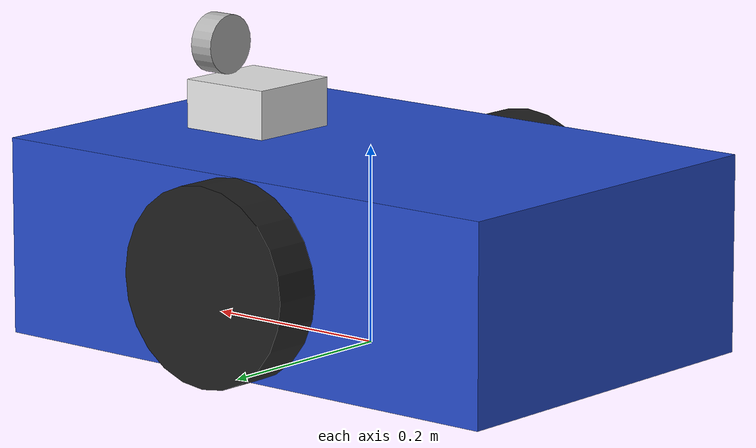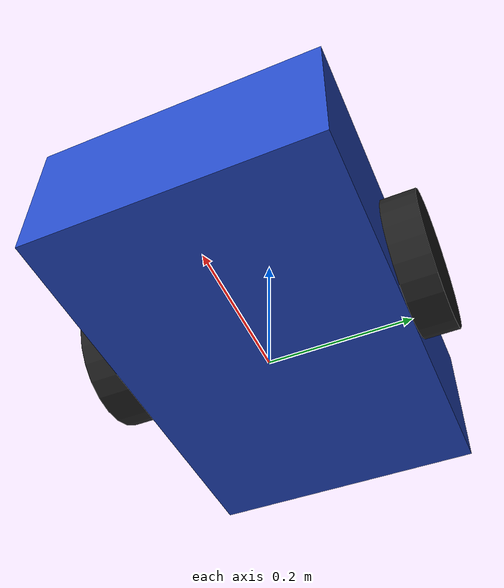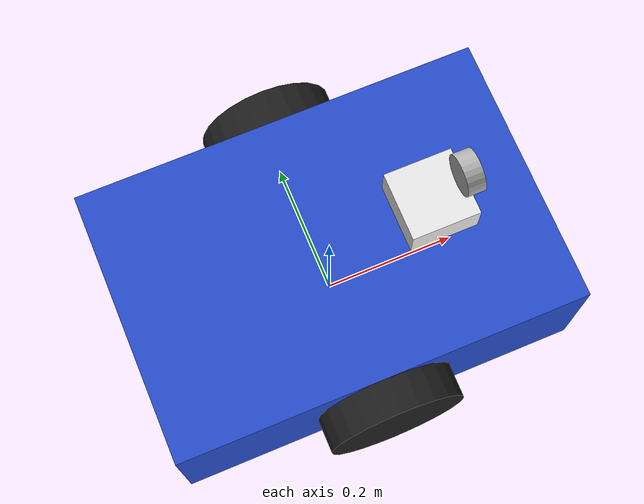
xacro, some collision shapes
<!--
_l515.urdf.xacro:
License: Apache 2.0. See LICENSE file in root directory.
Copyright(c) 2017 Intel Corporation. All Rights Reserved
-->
<?xml version="1.0"?>

<robot name="mobile_robot_with_l515" xmlns:xacro="http://ros.org/wiki/xacro">

  <xacro:include filename="$(find realsense2_description)/urdf/_l515.urdf.xacro" />

  <!-- Constants for robot dimensions -->
  <xacro:property name="base_length" value="0.6" />
  <xacro:property name="base_width" value="0.4" />
  <xacro:property name="base_height" value="0.2" />
  <xacro:property name="wheel_radius" value="0.1" />
  <xacro:property name="wheel_width" value="0.05" />
  <xacro:property name="wheel_separation" value="0.45" />

  <!-- Base footprint (on the ground) -->
  <link name="base_footprint"/>

  <!-- Base link joint -->
  <joint name="base_joint" type="fixed">
    <parent link="base_footprint"/>
    <child link="base_link"/>
    <origin xyz="0 0 ${wheel_radius}" rpy="0 0 0"/>
  </joint>

  <!-- Robot Base Link -->
  <link name="base_link">
    <visual>
      <geometry>
        <box size="${base_length} ${base_width} ${base_height}"/>
      </geometry>
      <material name="blue"/>
    </visual>
    <collision>
      <geometry>
        <box size="${base_length} ${base_width} ${base_height}"/>
      </geometry>
    </collision>
    <inertial>
      <mass value="20.0"/>
      <origin xyz="0 0 0" rpy="0 0 0"/>
      <inertia ixx="0.267" ixy="0.0" ixz="0.0"
               iyy="0.667" iyz="0.0"
               izz="0.8"/>
    </inertial>
  </link>

  <!-- Gazebo material for base -->
  <gazebo reference="base_link">
    <material>Gazebo/Blue</material>
  </gazebo>

  <!-- Left Wheel -->
  <link name="left_wheel">
    <visual>
      <geometry>
        <cylinder radius="${wheel_radius}" length="${wheel_width}"/>
      </geometry>
      <material name="black"/>
    </visual>
    <collision>
      <geometry>
        <cylinder radius="${wheel_radius}" length="${wheel_width}"/>
      </geometry>
    </collision>
    <inertial>
      <mass value="1.0"/>
      <origin xyz="0 0 0" rpy="0 0 0"/>
      <inertia ixx="0.005" ixy="0.0" ixz="0.0"
               iyy="0.005" iyz="0.0"
               izz="0.01"/>
    </inertial>
  </link>

  <joint name="left_wheel_joint" type="continuous">
    <parent link="base_link"/>
    <child link="left_wheel"/>
    <origin xyz="0 ${wheel_separation/2} 0" rpy="-1.5708 0 0"/>
    <axis xyz="0 0 1"/>
  </joint>

  <gazebo reference="left_wheel">
    <material>Gazebo/Black</material>
    <mu1>1.5</mu1>
    <mu2>1.5</mu2>
    <kp>1e6</kp>
    <kd>10</kd>
  </gazebo>

  <!-- Right Wheel -->
  <link name="right_wheel">
    <visual>
      <geometry>
        <cylinder radius="${wheel_radius}" length="${wheel_width}"/>
      </geometry>
      <material name="black"/>
    </visual>
    <collision>
      <geometry>
        <cylinder radius="${wheel_radius}" length="${wheel_width}"/>
      </geometry>
    </collision>
    <inertial>
      <mass value="1.0"/>
      <origin xyz="0 0 0" rpy="0 0 0"/>
      <inertia ixx="0.005" ixy="0.0" ixz="0.0"
               iyy="0.005" iyz="0.0"
               izz="0.01"/>
    </inertial>
  </link>

  <joint name="right_wheel_joint" type="continuous">
    <parent link="base_link"/>
    <child link="right_wheel"/>
    <origin xyz="0 ${-wheel_separation/2} 0" rpy="-1.5708 0 0"/>
    <axis xyz="0 0 1"/>
  </joint>

  <gazebo reference="right_wheel">
    <material>Gazebo/Black</material>
    <mu1>1.5</mu1>
    <mu2>1.5</mu2>
    <kp>1e6</kp>
    <kd>10</kd>
  </gazebo>

  <!-- Caster Wheel (front) -->
  <link name="caster_wheel">
    <visual>
      <geometry>
        <sphere radius="${wheel_radius/2}"/>
      </geometry>
      <material name="grey"/>
    </visual>
    <collision>
      <geometry>
        <sphere radius="${wheel_radius/2}"/>
      </geometry>
    </collision>
    <inertial>
      <mass value="0.5"/>
      <origin xyz="0 0 0" rpy="0 0 0"/>
      <inertia ixx="0.001" ixy="0.0" ixz="0.0"
               iyy="0.001" iyz="0.0"
               izz="0.001"/>
    </inertial>
  </link>

  <joint name="caster_wheel_joint" type="fixed">
    <parent link="base_link"/>
    <child link="caster_wheel"/>
    <origin xyz="${base_length/2 - wheel_radius/2} 0 ${-wheel_radius/2}" rpy="0 0 0"/>
  </joint>

  <gazebo reference="caster_wheel">
    <material>Gazebo/Grey</material>
    <mu1>0.05</mu1>
    <mu2>0.05</mu2>
  </gazebo>

  <!-- Camera Mount Platform -->
  <link name="camera_mount">
    <visual>
      <geometry>
        <box size="0.1 0.1 0.05"/>
      </geometry>
      <material name="white"/>
    </visual>
    <collision>
      <geometry>
        <box size="0.1 0.1 0.05"/>
      </geometry>
    </collision>
    <inertial>
      <mass value="0.2"/>
      <origin xyz="0 0 0" rpy="0 0 0"/>
      <inertia ixx="0.0002" ixy="0.0" ixz="0.0"
               iyy="0.0002" iyz="0.0"
               izz="0.0003"/>
    </inertial>
  </link>

  <joint name="camera_mount_joint" type="fixed">
    <parent link="base_link"/>
    <child link="camera_mount"/>
    <origin xyz="${base_length/4} 0 ${base_height/2 + 0.025}" rpy="0 0 0"/>
  </joint>

  <gazebo reference="camera_mount">
    <material>Gazebo/White</material>
  </gazebo>

  <xacro:sensor_l515
      name="robot_camera"
      topics_ns="robot_camera"
      parent="camera_mount"
      use_nominal_extrinsics="true"
      publish_pointcloud="true"
      add_plug="false"
      use_mesh="true">
      <!-- Mount camera 5cm above the mount platform, facing forward -->
      <origin xyz="0.05 0 0.025" rpy="0 0 0" />
  </xacro:sensor_l515>

  <!-- Differential drive plugin for Gazebo Harmonic (gz-sim-diff-drive-system) -->
  <gazebo>
    <plugin filename="gz-sim-diff-drive-system"
            name="gz::sim::systems::DiffDrive">
      <left_joint>left_wheel_joint</left_joint>
      <right_joint>right_wheel_joint</right_joint>
      <wheel_separation>${wheel_separation}</wheel_separation>
      <wheel_radius>${wheel_radius}</wheel_radius>
      <max_linear_acceleration>1</max_linear_acceleration>
      <min_linear_acceleration>-1</min_linear_acceleration>
      <max_angular_acceleration>2</max_angular_acceleration>
      <min_angular_acceleration>-2</min_angular_acceleration>
      <topic>cmd_vel</topic>
      <odom_topic>odom</odom_topic>
      <tf_topic>tf</tf_topic>
      <frame_id>odom</frame_id>
      <child_frame_id>base_footprint</child_frame_id>
      <odom_publish_frequency>50</odom_publish_frequency>
    </plugin>
  </gazebo>

</robot>

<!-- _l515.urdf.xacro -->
<robot name="sensor_l515" xmlns:xacro="http://ros.org/wiki/xacro">
  <!--File includes-->
  <xacro:include filename="$(find realsense2_description)/urdf/_l515.gazebo.xacro" />
  <xacro:include filename="$(find realsense2_description)/urdf/_materials.urdf.xacro" />
  <xacro:include filename="$(find realsense2_description)/urdf/_usb_plug.urdf.xacro" /> <!-- this specific plug does not apply to L515 -->

  <xacro:macro name="sensor_l515" params="name:=camera topics_ns:=camera parent *origin use_nominal_extrinsics:=false publish_pointcloud:=false add_plug:=false use_mesh:=true">
    <xacro:property name="M_PI" value="3.1415926535897931" />

    <!-- The following values are approximate, and the camera node
     publishing TF values with actual calibrated camera extrinsic values -->
    <xacro:property name="l515_cam_depth_to_infra_offset" value="0.0"/>

    <!-- The following values model the aluminum peripherial case for the
  	L515 camera, with the camera joint represented by the actual
  	peripherial camera tripod mount -->
    <xacro:property name="l515_cam_width" value="0.061"/>
    <xacro:property name="l515_cam_height" value="0.06065"/>
    <xacro:property name="l515_cam_depth" value="0.026"/>
    <xacro:property name="l515_cam_mount_from_glass_offset" value="0.012"/>
    <!-- Zero depth to glass: see datasheet Revision 002, Fig. 2-2 page 11 -->
    <xacro:property name="l515_zero_depth_to_glass" value="0.0045"/>
    <!-- convenience precomputation to avoid clutter-->
    <xacro:property name="l515_depth_x_offset_from_mount" value="${l515_cam_mount_from_glass_offset-l515_zero_depth_to_glass}"/>

    <!-- The following offset is relative the the physical L515 camera peripherial
  	camera tripod mount -->
    <xacro:property name="l515_cam_depth_px" value="${l515_depth_x_offset_from_mount}"/>
    <xacro:property name="l515_cam_depth_py" value="0.0"/>
    <xacro:property name="l515_cam_center"   value="0.03015"/>
    <xacro:property name="l515_cam_center_to_transmitter_pz"  value="0.001"/>
    <xacro:property name="l515_cam_transmitter_to_depth_pz"   value="-0.010"/>
    <xacro:property name="l515_cam_transmitter_to_color_pz"   value="0.014"/>
    <xacro:property name="l515_cam_depth_pz" value="${l515_cam_center+l515_cam_center_to_transmitter_pz+l515_cam_transmitter_to_depth_pz}"/>
    <xacro:property name="l515_cam_center_to_depth_pz" value="${l515_cam_center_to_transmitter_pz+l515_cam_transmitter_to_depth_pz}"/>
    <xacro:property name="abs_mount_from_center"   value="0.020"/>

    <!-- IMU position (p) and rotation (r) offsets from the camera color frame -->
    <!-- These values are approximate and depend on the actual calibrated camera extrinsic values -->
    <xacro:property name="l515_cam_color_to_imu_px" value="-0.00410137791186571"/>
    <xacro:property name="l515_cam_color_to_imu_py" value="-0.0129784867167473"/>
    <xacro:property name="l515_cam_color_to_imu_pz" value="0.00256138201802969"/>
    <xacro:property name="l515_cam_color_to_imu_rx" value="-0.006161012"/>
    <xacro:property name="l515_cam_color_to_imu_ry" value="0.020193459"/>
    <xacro:property name="l515_cam_color_to_imu_rz" value="0.016301375"/>

    <!-- camera body, with origin at bottom screw mount -->
    <joint name="${name}_joint" type="fixed">
      <xacro:insert_block name="origin" />
      <parent link="${parent}"/>
      <child link="${name}_bottom_screw_frame" />
    </joint>
    <link name="${name}_bottom_screw_frame"/>

    <joint name="${name}_link_joint" type="fixed">
      <origin xyz="${l515_cam_depth_px} ${l515_cam_depth_py} ${l515_cam_depth_pz}" rpy="0 0 0"/>
      <parent link="${name}_bottom_screw_frame"/>
      <child link="${name}_link" />
    </joint>

    <link name="${name}_link">
      <visual>
        <!-- the mesh origin is in the middle of the front plate -->
        <xacro:if value="${use_mesh}">
          <origin xyz="${l515_zero_depth_to_glass} 0 ${-l515_cam_center_to_depth_pz}" rpy="${M_PI/2} 0 ${M_PI/2}"/>
          <geometry>
              <mesh filename="package://realsense2_description/meshes/l515.dae" />
          </geometry>
        </xacro:if>
        <xacro:unless value="${use_mesh}">
          <origin xyz="${-l515_cam_depth_px+l515_cam_mount_from_glass_offset-l515_cam_depth/2} 0 ${-l515_cam_center_to_depth_pz}" rpy="${M_PI/2} 0 ${M_PI/2}"/>
          <geometry>
            <cylinder radius="${l515_cam_width/2.0}" length="${l515_cam_depth}"/>
          </geometry>
          <material name="aluminum"/>
        </xacro:unless>
      </visual>
      <collision>
        <origin xyz="${-l515_cam_depth_px+l515_cam_mount_from_glass_offset-l515_cam_depth/2} 0 ${-l515_cam_center_to_depth_pz}" rpy="${M_PI/2} 0 ${M_PI/2}"/>
        <geometry>
          <cylinder radius="${l515_cam_width/2.0}" length="${l515_cam_depth}"/>
        </geometry>
      </collision>
      <inertial>
        <!-- The following are not reliable values, and should not be used for modeling -->
        <!-- calculated assuming full cylinder as described here: https://en.wikipedia.org/wiki/List_of_moments_of_inertia -->
        <mass value="0.095" />
        <origin xyz="0 0 0" />
        <inertia ixx="0.000044" ixy="0.0" ixz="0.0" iyy="0.000027" iyz="0.0" izz="0.000027" />
      </inertial>
    </link>

    <joint name="${name}_lower_mount_joint" type="fixed">
      <origin xyz="${l515_cam_mount_from_glass_offset-l515_cam_depth} 0 ${l515_cam_center-abs_mount_from_center}" rpy="0 0 0" />
      <parent link="${name}_bottom_screw_frame" />
      <child link="${name}_lower_mount" />
    </joint>
    <link name="${name}_lower_mount"/>

    <joint name="${name}_upper_mount_joint" type="fixed">
      <origin xyz="${l515_cam_mount_from_glass_offset-l515_cam_depth} 0 ${l515_cam_center+abs_mount_from_center}" rpy="0 0 0" />
      <parent link="${name}_bottom_screw_frame" />
      <child link="${name}_upper_mount" />
    </joint>
    <link name="${name}_upper_mount"/>

    <!-- Use the nominal extrinsics between camera frames if the calibrated extrinsics aren't being published. e.g. running the device in simulation  -->
    <xacro:if value="${use_nominal_extrinsics}">
      <!-- camera depth joints and links -->
      <joint name="${name}_depth_joint" type="fixed">
        <origin xyz="0 0 0" rpy="0 0 0"/>
        <parent link="${name}_link"/>
        <child link="${name}_depth_frame" />
      </joint>
      <link name="${name}_depth_frame"/>

      <joint name="${name}_depth_optical_joint" type="fixed">
        <origin xyz="0 0 0" rpy="${-M_PI/2} 0 ${-M_PI/2}" />
        <parent link="${name}_depth_frame" />
        <child link="${name}_depth_optical_frame" />
      </joint>
      <link name="${name}_depth_optical_frame"/>

      <!-- camera left IR joints and links -->
      <joint name="${name}_infra_joint" type="fixed">
        <origin xyz="0 ${l515_cam_depth_to_infra_offset} 0" rpy="0 0 0" />
        <parent link="${name}_link" />
        <child link="${name}_infra_frame" />
      </joint>
      <link name="${name}_infra_frame"/>

      <joint name="${name}_infra_optical_joint" type="fixed">
        <origin xyz="0 0 0" rpy="${-M_PI/2} 0 ${-M_PI/2}" />
        <parent link="${name}_infra_frame" />
        <child link="${name}_infra_optical_frame" />
      </joint>
      <link name="${name}_infra_optical_frame"/>

      <!-- camera color joints and links -->
      <joint name="${name}_color_joint" type="fixed">
        <origin xyz="0 0 ${-l515_cam_transmitter_to_depth_pz+l515_cam_transmitter_to_color_pz}" rpy="0 0 0" />
        <parent link="${name}_link" />
        <child link="${name}_color_frame" />
      </joint>
      <link name="${name}_color_frame"/>

      <joint name="${name}_color_optical_joint" type="fixed">
        <origin xyz="0 0 0" rpy="${-M_PI/2} 0 ${-M_PI/2}" />
        <parent link="${name}_color_frame" />
        <child link="${name}_color_optical_frame" />
      </joint>
      <link name="${name}_color_optical_frame"/>

      <!-- camera IMU joints and links -->
      <link name="${name}_gyro_frame" />
      <link name="${name}_gyro_optical_frame" />
      <link name="${name}_accel_frame" />
      <link name="${name}_accel_optical_frame" />

      <joint name="${name}_gyro_joint" type="fixed">
        <origin xyz = "${l515_cam_color_to_imu_px} ${l515_cam_color_to_imu_py} ${l515_cam_color_to_imu_pz}" rpy = "${l515_cam_color_to_imu_rx} ${l515_cam_color_to_imu_ry} ${l515_cam_color_to_imu_rz}" />
        <parent link="${name}_color_frame" />
        <child link="${name}_gyro_frame" />
      </joint>

      <joint name="${name}_gyro_optical_joint" type="fixed">
        <origin xyz = "0 0 0" rpy = "${-M_PI/2} 0 ${-M_PI/2}" />
        <parent link="${name}_gyro_frame" />
        <child link="${name}_gyro_optical_frame" />
      </joint>

      <joint name="${name}_accel_joint" type="fixed">
        <origin xyz = "${l515_cam_color_to_imu_px} ${l515_cam_color_to_imu_py} ${l515_cam_color_to_imu_pz}" rpy = "${l515_cam_color_to_imu_rx} ${l515_cam_color_to_imu_ry} ${l515_cam_color_to_imu_rz}" />
        <parent link="${name}_color_frame" />
        <child link="${name}_accel_frame" />
      </joint>

      <joint name="${name}_accel_optical_joint" type="fixed">
        <origin xyz = "0 0 0" rpy = "${-M_PI/2} 0 ${-M_PI/2}" />
        <parent link="${name}_accel_frame" />
        <child link="${name}_accel_optical_frame" />
      </joint>
    </xacro:if>
    <xacro:if value="${add_plug}">
      <xacro:usb_plug parent="${name}_bottom_screw_frame" name="${name}_usb_plug">
        <origin xyz="${l515_cam_mount_from_glass_offset-0.0148} -0.018 0.018" rpy="${M_PI/4} 0 0 "/>
      </xacro:usb_plug>
    </xacro:if>

    <!-- Realsense Gazebo Plugin -->
    <xacro:gazebo_l515 camera_name="${name}" reference_link="${name}_link" topics_ns="${topics_ns}" depth_optical_frame="${name}_depth_optical_frame" color_optical_frame="${name}_color_optical_frame" infrared_optical_frame="${name}_infra_optical_frame" publish_pointcloud="${publish_pointcloud}"/>

  </xacro:macro>
</robot>
